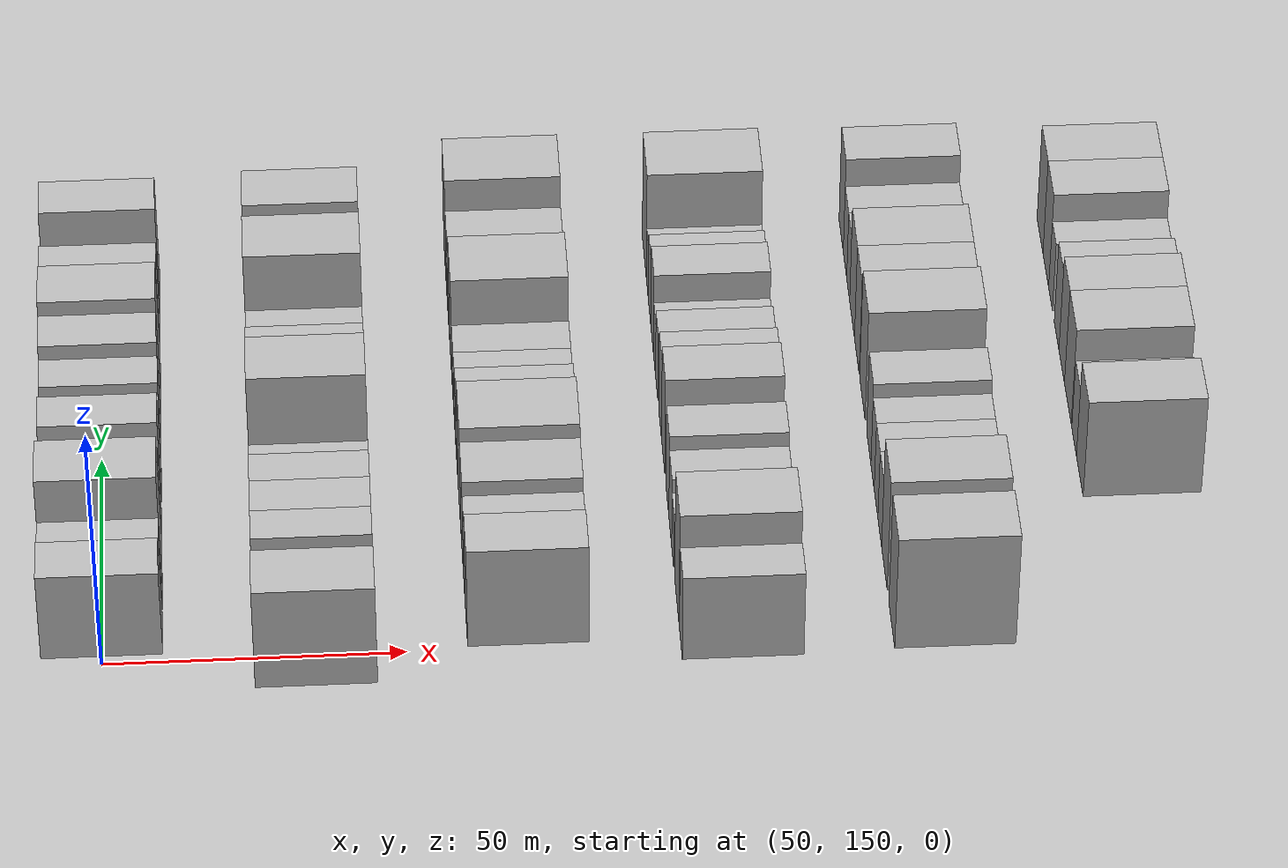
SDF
<sdf version="1.6">
 <world name="default">
  <model name="building_79">
   <static>1</static>
   <pose>50.0000 156.1337 0 0.000000 0.000000 0.000000</pose>
   <link name="link">
    <pose>0 0 9.00 0 0 0</pose>
    <collision name="collision"><geometry><box><size>20.0000 8.5910 18.0000</size></box></geometry></collision>
    <visual name="visual">
     <cast_shadows>0</cast_shadows>
     <geometry><box><size>20.0000 8.5910 18.0000</size></box></geometry>
     <material>
      <script>
       <uri>model://HANNAS_wall/materials/scripts</uri>
       <uri>model://HANNAS_wall/materials/textures</uri>
       <name>vrc/HANNAS_wall</name>
      </script>
     </material>
    </visual>
   </link>
  </model>
  <model name="building_80">
   <static>1</static>
   <pose>50.0000 165.4798 0 0.000000 0.000000 0.000000</pose>
   <link name="link">
    <pose>0 0 7.50 0 0 0</pose>
    <collision name="collision"><geometry><box><size>20.0000 6.1012 15.0000</size></box></geometry></collision>
    <visual name="visual">
     <cast_shadows>0</cast_shadows>
     <geometry><box><size>20.0000 6.1012 15.0000</size></box></geometry>
     <material>
      <script>
       <uri>model://HANNAS_wall/materials/scripts</uri>
       <uri>model://HANNAS_wall/materials/textures</uri>
       <name>vrc/HANNAS_wall</name>
      </script>
     </material>
    </visual>
   </link>
  </model>
  <model name="building_81">
   <static>1</static>
   <pose>50.0000 173.5960 0 0.000000 0.000000 0.000000</pose>
   <link name="link">
    <pose>0 0 12.00 0 0 0</pose>
    <collision name="collision"><geometry><box><size>20.0000 10.1312 24.0000</size></box></geometry></collision>
    <visual name="visual">
     <cast_shadows>0</cast_shadows>
     <geometry><box><size>20.0000 10.1312 24.0000</size></box></geometry>
     <material>
      <script>
       <uri>model://HANNAS_wall/materials/scripts</uri>
       <uri>model://HANNAS_wall/materials/textures</uri>
       <name>vrc/HANNAS_wall</name>
      </script>
     </material>
    </visual>
   </link>
  </model>
  <model name="building_82">
   <static>1</static>
   <pose>50.0000 182.7346 0 0.000000 0.000000 0.000000</pose>
   <link name="link">
    <pose>0 0 7.50 0 0 0</pose>
    <collision name="collision"><geometry><box><size>20.0000 6.1461 15.0000</size></box></geometry></collision>
    <visual name="visual">
     <cast_shadows>0</cast_shadows>
     <geometry><box><size>20.0000 6.1461 15.0000</size></box></geometry>
     <material>
      <script>
       <uri>model://HANNAS_wall/materials/scripts</uri>
       <uri>model://HANNAS_wall/materials/textures</uri>
       <name>vrc/HANNAS_wall</name>
      </script>
     </material>
    </visual>
   </link>
  </model>
  <model name="building_83">
   <static>1</static>
   <pose>50.0000 192.5878 0 0.000000 0.000000 0.000000</pose>
   <link name="link">
    <pose>0 0 9.00 0 0 0</pose>
    <collision name="collision"><geometry><box><size>20.0000 7.5605 18.0000</size></box></geometry></collision>
    <visual name="visual">
     <cast_shadows>0</cast_shadows>
     <geometry><box><size>20.0000 7.5605 18.0000</size></box></geometry>
     <material>
      <script>
       <uri>model://HANNAS_wall/materials/scripts</uri>
       <uri>model://HANNAS_wall/materials/textures</uri>
       <name>vrc/HANNAS_wall</name>
      </script>
     </material>
    </visual>
   </link>
  </model>
  <model name="building_84">
   <static>1</static>
   <pose>50.0000 199.3157 0 0.000000 0.000000 0.000000</pose>
   <link name="link">
    <pose>0 0 6.00 0 0 0</pose>
    <collision name="collision"><geometry><box><size>20.0000 5.8952 12.0000</size></box></geometry></collision>
    <visual name="visual">
     <cast_shadows>0</cast_shadows>
     <geometry><box><size>20.0000 5.8952 12.0000</size></box></geometry>
     <material>
      <script>
       <uri>model://HANNAS_wall/materials/scripts</uri>
       <uri>model://HANNAS_wall/materials/textures</uri>
       <name>vrc/HANNAS_wall</name>
      </script>
     </material>
    </visual>
   </link>
  </model>
  <model name="building_85">
   <static>1</static>
   <pose>50.0000 205.7539 0 0.000000 0.000000 0.000000</pose>
   <link name="link">
    <pose>0 0 7.50 0 0 0</pose>
    <collision name="collision"><geometry><box><size>20.0000 6.9813 15.0000</size></box></geometry></collision>
    <visual name="visual">
     <cast_shadows>0</cast_shadows>
     <geometry><box><size>20.0000 6.9813 15.0000</size></box></geometry>
     <material>
      <script>
       <uri>model://HANNAS_wall/materials/scripts</uri>
       <uri>model://HANNAS_wall/materials/textures</uri>
       <name>vrc/HANNAS_wall</name>
      </script>
     </material>
    </visual>
   </link>
  </model>
  <model name="building_86">
   <static>1</static>
   <pose>50.0000 213.2031 0 0.000000 0.000000 0.000000</pose>
   <link name="link">
    <pose>0 0 9.00 0 0 0</pose>
    <collision name="collision"><geometry><box><size>20.0000 7.9171 18.0000</size></box></geometry></collision>
    <visual name="visual">
     <cast_shadows>0</cast_shadows>
     <geometry><box><size>20.0000 7.9171 18.0000</size></box></geometry>
     <material>
      <script>
       <uri>model://HANNAS_wall/materials/scripts</uri>
       <uri>model://HANNAS_wall/materials/textures</uri>
       <name>vrc/HANNAS_wall</name>
      </script>
     </material>
    </visual>
   </link>
  </model>
  <model name="building_87">
   <static>1</static>
   <pose>50.0000 221.9547 0 0.000000 0.000000 0.000000</pose>
   <link name="link">
    <pose>0 0 10.50 0 0 0</pose>
    <collision name="collision"><geometry><box><size>20.0000 9.5860 21.0000</size></box></geometry></collision>
    <visual name="visual">
     <cast_shadows>0</cast_shadows>
     <geometry><box><size>20.0000 9.5860 21.0000</size></box></geometry>
     <material>
      <script>
       <uri>model://HANNAS_wall/materials/scripts</uri>
       <uri>model://HANNAS_wall/materials/textures</uri>
       <name>vrc/HANNAS_wall</name>
      </script>
     </material>
    </visual>
   </link>
  </model>
  <model name="building_88">
   <static>1</static>
   <pose>50.0000 231.6643 0 0.000000 0.000000 0.000000</pose>
   <link name="link">
    <pose>0 0 9.00 0 0 0</pose>
    <collision name="collision"><geometry><box><size>20.0000 7.8333 18.0000</size></box></geometry></collision>
    <visual name="visual">
     <cast_shadows>0</cast_shadows>
     <geometry><box><size>20.0000 7.8333 18.0000</size></box></geometry>
     <material>
      <script>
       <uri>model://HANNAS_wall/materials/scripts</uri>
       <uri>model://HANNAS_wall/materials/textures</uri>
       <name>vrc/HANNAS_wall</name>
      </script>
     </material>
    </visual>
   </link>
  </model>
  <model name="building_89">
   <static>1</static>
   <pose>50.0000 238.2363 0 0.000000 0.000000 0.000000</pose>
   <link name="link">
    <pose>0 0 6.00 0 0 0</pose>
    <collision name="collision"><geometry><box><size>20.0000 5.3108 12.0000</size></box></geometry></collision>
    <visual name="visual">
     <cast_shadows>0</cast_shadows>
     <geometry><box><size>20.0000 5.3108 12.0000</size></box></geometry>
     <material>
      <script>
       <uri>model://HANNAS_wall/materials/scripts</uri>
       <uri>model://HANNAS_wall/materials/textures</uri>
       <name>vrc/HANNAS_wall</name>
      </script>
     </material>
    </visual>
   </link>
  </model>
  <model name="building_90">
   <static>1</static>
   <pose>50.0000 245.1266 0 0.000000 0.000000 0.000000</pose>
   <link name="link">
    <pose>0 0 10.50 0 0 0</pose>
    <collision name="collision"><geometry><box><size>20.0000 8.4697 21.0000</size></box></geometry></collision>
    <visual name="visual">
     <cast_shadows>0</cast_shadows>
     <geometry><box><size>20.0000 8.4697 21.0000</size></box></geometry>
     <material>
      <script>
       <uri>model://HANNAS_wall/materials/scripts</uri>
       <uri>model://HANNAS_wall/materials/textures</uri>
       <name>vrc/HANNAS_wall</name>
      </script>
     </material>
    </visual>
   </link>
  </model>
  <model name="building_209">
   <static>1</static>
   <pose>85.0000 148.1686 0 0.000000 0.000000 0.000000</pose>
   <link name="link">
    <pose>0 0 10.50 0 0 0</pose>
    <collision name="collision"><geometry><box><size>20.0000 10.2588 21.0000</size></box></geometry></collision>
    <visual name="visual">
     <cast_shadows>0</cast_shadows>
     <geometry><box><size>20.0000 10.2588 21.0000</size></box></geometry>
     <material>
      <script>
       <uri>model://HANNAS_wall/materials/scripts</uri>
       <uri>model://HANNAS_wall/materials/textures</uri>
       <name>vrc/HANNAS_wall</name>
      </script>
     </material>
    </visual>
   </link>
  </model>
  <model name="building_210">
   <static>1</static>
   <pose>85.0000 158.9031 0 0.000000 0.000000 0.000000</pose>
   <link name="link">
    <pose>0 0 6.00 0 0 0</pose>
    <collision name="collision"><geometry><box><size>20.0000 5.2103 12.0000</size></box></geometry></collision>
    <visual name="visual">
     <cast_shadows>0</cast_shadows>
     <geometry><box><size>20.0000 5.2103 12.0000</size></box></geometry>
     <material>
      <script>
       <uri>model://HANNAS_wall/materials/scripts</uri>
       <uri>model://HANNAS_wall/materials/textures</uri>
       <name>vrc/HANNAS_wall</name>
      </script>
     </material>
    </visual>
   </link>
  </model>
  <model name="building_211">
   <static>1</static>
   <pose>85.0000 165.9620 0 0.000000 0.000000 0.000000</pose>
   <link name="link">
    <pose>0 0 7.50 0 0 0</pose>
    <collision name="collision"><geometry><box><size>20.0000 6.9075 15.0000</size></box></geometry></collision>
    <visual name="visual">
     <cast_shadows>0</cast_shadows>
     <geometry><box><size>20.0000 6.9075 15.0000</size></box></geometry>
     <material>
      <script>
       <uri>model://HANNAS_wall/materials/scripts</uri>
       <uri>model://HANNAS_wall/materials/textures</uri>
       <name>vrc/HANNAS_wall</name>
      </script>
     </material>
    </visual>
   </link>
  </model>
  <model name="building_212">
   <static>1</static>
   <pose>85.0000 173.0814 0 0.000000 0.000000 0.000000</pose>
   <link name="link">
    <pose>0 0 7.50 0 0 0</pose>
    <collision name="collision"><geometry><box><size>20.0000 7.3312 15.0000</size></box></geometry></collision>
    <visual name="visual">
     <cast_shadows>0</cast_shadows>
     <geometry><box><size>20.0000 7.3312 15.0000</size></box></geometry>
     <material>
      <script>
       <uri>model://HANNAS_wall/materials/scripts</uri>
       <uri>model://HANNAS_wall/materials/textures</uri>
       <name>vrc/HANNAS_wall</name>
      </script>
     </material>
    </visual>
   </link>
  </model>
  <model name="building_213">
   <static>1</static>
   <pose>85.0000 180.0428 0 0.000000 0.000000 0.000000</pose>
   <link name="link">
    <pose>0 0 7.50 0 0 0</pose>
    <collision name="collision"><geometry><box><size>20.0000 6.5916 15.0000</size></box></geometry></collision>
    <visual name="visual">
     <cast_shadows>0</cast_shadows>
     <geometry><box><size>20.0000 6.5916 15.0000</size></box></geometry>
     <material>
      <script>
       <uri>model://HANNAS_wall/materials/scripts</uri>
       <uri>model://HANNAS_wall/materials/textures</uri>
       <name>vrc/HANNAS_wall</name>
      </script>
     </material>
    </visual>
   </link>
  </model>
  <model name="building_214">
   <static>1</static>
   <pose>85.0000 186.2026 0 0.000000 0.000000 0.000000</pose>
   <link name="link">
    <pose>0 0 6.00 0 0 0</pose>
    <collision name="collision"><geometry><box><size>20.0000 5.7280 12.0000</size></box></geometry></collision>
    <visual name="visual">
     <cast_shadows>0</cast_shadows>
     <geometry><box><size>20.0000 5.7280 12.0000</size></box></geometry>
     <material>
      <script>
       <uri>model://HANNAS_wall/materials/scripts</uri>
       <uri>model://HANNAS_wall/materials/textures</uri>
       <name>vrc/HANNAS_wall</name>
      </script>
     </material>
    </visual>
   </link>
  </model>
  <model name="building_215">
   <static>1</static>
   <pose>85.0000 197.4309 0 0.000000 0.000000 0.000000</pose>
   <link name="link">
    <pose>0 0 12.00 0 0 0</pose>
    <collision name="collision"><geometry><box><size>20.0000 10.7288 24.0000</size></box></geometry></collision>
    <visual name="visual">
     <cast_shadows>0</cast_shadows>
     <geometry><box><size>20.0000 10.7288 24.0000</size></box></geometry>
     <material>
      <script>
       <uri>model://HANNAS_wall/materials/scripts</uri>
       <uri>model://HANNAS_wall/materials/textures</uri>
       <name>vrc/HANNAS_wall</name>
      </script>
     </material>
    </visual>
   </link>
  </model>
  <model name="building_216">
   <static>1</static>
   <pose>85.0000 208.5797 0 0.000000 0.000000 0.000000</pose>
   <link name="link">
    <pose>0 0 9.00 0 0 0</pose>
    <collision name="collision"><geometry><box><size>20.0000 7.5687 18.0000</size></box></geometry></collision>
    <visual name="visual">
     <cast_shadows>0</cast_shadows>
     <geometry><box><size>20.0000 7.5687 18.0000</size></box></geometry>
     <material>
      <script>
       <uri>model://HANNAS_wall/materials/scripts</uri>
       <uri>model://HANNAS_wall/materials/textures</uri>
       <name>vrc/HANNAS_wall</name>
      </script>
     </material>
    </visual>
   </link>
  </model>
  <model name="building_217">
   <static>1</static>
   <pose>85.0000 215.3367 0 0.000000 0.000000 0.000000</pose>
   <link name="link">
    <pose>0 0 6.00 0 0 0</pose>
    <collision name="collision"><geometry><box><size>20.0000 5.9454 12.0000</size></box></geometry></collision>
    <visual name="visual">
     <cast_shadows>0</cast_shadows>
     <geometry><box><size>20.0000 5.9454 12.0000</size></box></geometry>
     <material>
      <script>
       <uri>model://HANNAS_wall/materials/scripts</uri>
       <uri>model://HANNAS_wall/materials/textures</uri>
       <name>vrc/HANNAS_wall</name>
      </script>
     </material>
    </visual>
   </link>
  </model>
  <model name="building_218">
   <static>1</static>
   <pose>85.0000 220.9538 0 0.000000 0.000000 0.000000</pose>
   <link name="link">
    <pose>0 0 6.00 0 0 0</pose>
    <collision name="collision"><geometry><box><size>20.0000 5.2887 12.0000</size></box></geometry></collision>
    <visual name="visual">
     <cast_shadows>0</cast_shadows>
     <geometry><box><size>20.0000 5.2887 12.0000</size></box></geometry>
     <material>
      <script>
       <uri>model://HANNAS_wall/materials/scripts</uri>
       <uri>model://HANNAS_wall/materials/textures</uri>
       <name>vrc/HANNAS_wall</name>
      </script>
     </material>
    </visual>
   </link>
  </model>
  <model name="building_219">
   <static>1</static>
   <pose>85.0000 229.0653 0 0.000000 0.000000 0.000000</pose>
   <link name="link">
    <pose>0 0 12.00 0 0 0</pose>
    <collision name="collision"><geometry><box><size>20.0000 10.9344 24.0000</size></box></geometry></collision>
    <visual name="visual">
     <cast_shadows>0</cast_shadows>
     <geometry><box><size>20.0000 10.9344 24.0000</size></box></geometry>
     <material>
      <script>
       <uri>model://HANNAS_wall/materials/scripts</uri>
       <uri>model://HANNAS_wall/materials/textures</uri>
       <name>vrc/HANNAS_wall</name>
      </script>
     </material>
    </visual>
   </link>
  </model>
  <model name="building_220">
   <static>1</static>
   <pose>85.0000 237.7225 0 0.000000 0.000000 0.000000</pose>
   <link name="link">
    <pose>0 0 7.50 0 0 0</pose>
    <collision name="collision"><geometry><box><size>20.0000 6.3800 15.0000</size></box></geometry></collision>
    <visual name="visual">
     <cast_shadows>0</cast_shadows>
     <geometry><box><size>20.0000 6.3800 15.0000</size></box></geometry>
     <material>
      <script>
       <uri>model://HANNAS_wall/materials/scripts</uri>
       <uri>model://HANNAS_wall/materials/textures</uri>
       <name>vrc/HANNAS_wall</name>
      </script>
     </material>
    </visual>
   </link>
  </model>
  <model name="building_221">
   <static>1</static>
   <pose>85.0000 245.6559 0 0.000000 0.000000 0.000000</pose>
   <link name="link">
    <pose>0 0 10.50 0 0 0</pose>
    <collision name="collision"><geometry><box><size>20.0000 9.4868 21.0000</size></box></geometry></collision>
    <visual name="visual">
     <cast_shadows>0</cast_shadows>
     <geometry><box><size>20.0000 9.4868 21.0000</size></box></geometry>
     <material>
      <script>
       <uri>model://HANNAS_wall/materials/scripts</uri>
       <uri>model://HANNAS_wall/materials/textures</uri>
       <name>vrc/HANNAS_wall</name>
      </script>
     </material>
    </visual>
   </link>
  </model>
  <model name="building_332">
   <static>1</static>
   <pose>120.0000 155.3937 0 0.000000 0.000000 0.000000</pose>
   <link name="link">
    <pose>0 0 10.50 0 0 0</pose>
    <collision name="collision"><geometry><box><size>20.0000 9.1762 21.0000</size></box></geometry></collision>
    <visual name="visual">
     <cast_shadows>0</cast_shadows>
     <geometry><box><size>20.0000 9.1762 21.0000</size></box></geometry>
     <material>
      <script>
       <uri>model://HANNAS_wall/materials/scripts</uri>
       <uri>model://HANNAS_wall/materials/textures</uri>
       <name>vrc/HANNAS_wall</name>
      </script>
     </material>
    </visual>
   </link>
  </model>
  <model name="building_333">
   <static>1</static>
   <pose>120.0000 163.8452 0 0.000000 0.000000 0.000000</pose>
   <link name="link">
    <pose>0 0 9.00 0 0 0</pose>
    <collision name="collision"><geometry><box><size>20.0000 7.7269 18.0000</size></box></geometry></collision>
    <visual name="visual">
     <cast_shadows>0</cast_shadows>
     <geometry><box><size>20.0000 7.7269 18.0000</size></box></geometry>
     <material>
      <script>
       <uri>model://HANNAS_wall/materials/scripts</uri>
       <uri>model://HANNAS_wall/materials/textures</uri>
       <name>vrc/HANNAS_wall</name>
      </script>
     </material>
    </visual>
   </link>
  </model>
  <model name="building_334">
   <static>1</static>
   <pose>120.0000 172.6794 0 0.000000 0.000000 0.000000</pose>
   <link name="link">
    <pose>0 0 10.50 0 0 0</pose>
    <collision name="collision"><geometry><box><size>20.0000 9.9414 21.0000</size></box></geometry></collision>
    <visual name="visual">
     <cast_shadows>0</cast_shadows>
     <geometry><box><size>20.0000 9.9414 21.0000</size></box></geometry>
     <material>
      <script>
       <uri>model://HANNAS_wall/materials/scripts</uri>
       <uri>model://HANNAS_wall/materials/textures</uri>
       <name>vrc/HANNAS_wall</name>
      </script>
     </material>
    </visual>
   </link>
  </model>
  <model name="building_335">
   <static>1</static>
   <pose>120.0000 183.5876 0 0.000000 0.000000 0.000000</pose>
   <link name="link">
    <pose>0 0 12.00 0 0 0</pose>
    <collision name="collision"><geometry><box><size>20.0000 11.8751 24.0000</size></box></geometry></collision>
    <visual name="visual">
     <cast_shadows>0</cast_shadows>
     <geometry><box><size>20.0000 11.8751 24.0000</size></box></geometry>
     <material>
      <script>
       <uri>model://HANNAS_wall/materials/scripts</uri>
       <uri>model://HANNAS_wall/materials/textures</uri>
       <name>vrc/HANNAS_wall</name>
      </script>
     </material>
    </visual>
   </link>
  </model>
  <model name="building_336">
   <static>1</static>
   <pose>120.0000 195.6427 0 0.000000 0.000000 0.000000</pose>
   <link name="link">
    <pose>0 0 9.00 0 0 0</pose>
    <collision name="collision"><geometry><box><size>20.0000 8.2351 18.0000</size></box></geometry></collision>
    <visual name="visual">
     <cast_shadows>0</cast_shadows>
     <geometry><box><size>20.0000 8.2351 18.0000</size></box></geometry>
     <material>
      <script>
       <uri>model://HANNAS_wall/materials/scripts</uri>
       <uri>model://HANNAS_wall/materials/textures</uri>
       <name>vrc/HANNAS_wall</name>
      </script>
     </material>
    </visual>
   </link>
  </model>
  <model name="building_337">
   <static>1</static>
   <pose>120.0000 203.5070 0 0.000000 0.000000 0.000000</pose>
   <link name="link">
    <pose>0 0 7.50 0 0 0</pose>
    <collision name="collision"><geometry><box><size>20.0000 7.4935 15.0000</size></box></geometry></collision>
    <visual name="visual">
     <cast_shadows>0</cast_shadows>
     <geometry><box><size>20.0000 7.4935 15.0000</size></box></geometry>
     <material>
      <script>
       <uri>model://HANNAS_wall/materials/scripts</uri>
       <uri>model://HANNAS_wall/materials/textures</uri>
       <name>vrc/HANNAS_wall</name>
      </script>
     </material>
    </visual>
   </link>
  </model>
  <model name="building_338">
   <static>1</static>
   <pose>120.0000 210.7740 0 0.000000 0.000000 0.000000</pose>
   <link name="link">
    <pose>0 0 7.50 0 0 0</pose>
    <collision name="collision"><geometry><box><size>20.0000 7.0405 15.0000</size></box></geometry></collision>
    <visual name="visual">
     <cast_shadows>0</cast_shadows>
     <geometry><box><size>20.0000 7.0405 15.0000</size></box></geometry>
     <material>
      <script>
       <uri>model://HANNAS_wall/materials/scripts</uri>
       <uri>model://HANNAS_wall/materials/textures</uri>
       <name>vrc/HANNAS_wall</name>
      </script>
     </material>
    </visual>
   </link>
  </model>
  <model name="building_339">
   <static>1</static>
   <pose>120.0000 221.1693 0 0.000000 0.000000 0.000000</pose>
   <link name="link">
    <pose>0 0 12.00 0 0 0</pose>
    <collision name="collision"><geometry><box><size>20.0000 11.7501 24.0000</size></box></geometry></collision>
    <visual name="visual">
     <cast_shadows>0</cast_shadows>
     <geometry><box><size>20.0000 11.7501 24.0000</size></box></geometry>
     <material>
      <script>
       <uri>model://HANNAS_wall/materials/scripts</uri>
       <uri>model://HANNAS_wall/materials/textures</uri>
       <name>vrc/HANNAS_wall</name>
      </script>
     </material>
    </visual>
   </link>
  </model>
  <model name="building_340">
   <static>1</static>
   <pose>120.0000 230.3986 0 0.000000 0.000000 0.000000</pose>
   <link name="link">
    <pose>0 0 7.50 0 0 0</pose>
    <collision name="collision"><geometry><box><size>20.0000 6.7084 15.0000</size></box></geometry></collision>
    <visual name="visual">
     <cast_shadows>0</cast_shadows>
     <geometry><box><size>20.0000 6.7084 15.0000</size></box></geometry>
     <material>
      <script>
       <uri>model://HANNAS_wall/materials/scripts</uri>
       <uri>model://HANNAS_wall/materials/textures</uri>
       <name>vrc/HANNAS_wall</name>
      </script>
     </material>
    </visual>
   </link>
  </model>
  <model name="building_341">
   <static>1</static>
   <pose>120.0000 237.3841 0 0.000000 0.000000 0.000000</pose>
   <link name="link">
    <pose>0 0 9.00 0 0 0</pose>
    <collision name="collision"><geometry><box><size>20.0000 7.2627 18.0000</size></box></geometry></collision>
    <visual name="visual">
     <cast_shadows>0</cast_shadows>
     <geometry><box><size>20.0000 7.2627 18.0000</size></box></geometry>
     <material>
      <script>
       <uri>model://HANNAS_wall/materials/scripts</uri>
       <uri>model://HANNAS_wall/materials/textures</uri>
       <name>vrc/HANNAS_wall</name>
      </script>
     </material>
    </visual>
   </link>
  </model>
  <model name="building_342">
   <static>1</static>
   <pose>120.0000 247.7692 0 0.000000 0.000000 0.000000</pose>
   <link name="link">
    <pose>0 0 12.00 0 0 0</pose>
    <collision name="collision"><geometry><box><size>20.0000 11.5075 24.0000</size></box></geometry></collision>
    <visual name="visual">
     <cast_shadows>0</cast_shadows>
     <geometry><box><size>20.0000 11.5075 24.0000</size></box></geometry>
     <material>
      <script>
       <uri>model://HANNAS_wall/materials/scripts</uri>
       <uri>model://HANNAS_wall/materials/textures</uri>
       <name>vrc/HANNAS_wall</name>
      </script>
     </material>
    </visual>
   </link>
  </model>
  <model name="building_461">
   <static>1</static>
   <pose>155.0000 149.4391 0 0.000000 0.000000 0.000000</pose>
   <link name="link">
    <pose>0 0 9.00 0 0 0</pose>
    <collision name="collision"><geometry><box><size>20.0000 7.4512 18.0000</size></box></geometry></collision>
    <visual name="visual">
     <cast_shadows>0</cast_shadows>
     <geometry><box><size>20.0000 7.4512 18.0000</size></box></geometry>
     <material>
      <script>
       <uri>model://HANNAS_wall/materials/scripts</uri>
       <uri>model://HANNAS_wall/materials/textures</uri>
       <name>vrc/HANNAS_wall</name>
      </script>
     </material>
    </visual>
   </link>
  </model>
  <model name="building_462">
   <static>1</static>
   <pose>155.0000 159.5597 0 0.000000 0.000000 0.000000</pose>
   <link name="link">
    <pose>0 0 12.00 0 0 0</pose>
    <collision name="collision"><geometry><box><size>20.0000 10.7901 24.0000</size></box></geometry></collision>
    <visual name="visual">
     <cast_shadows>0</cast_shadows>
     <geometry><box><size>20.0000 10.7901 24.0000</size></box></geometry>
     <material>
      <script>
       <uri>model://HANNAS_wall/materials/scripts</uri>
       <uri>model://HANNAS_wall/materials/textures</uri>
       <name>vrc/HANNAS_wall</name>
      </script>
     </material>
    </visual>
   </link>
  </model>
  <model name="building_463">
   <static>1</static>
   <pose>155.0000 170.5157 0 0.000000 0.000000 0.000000</pose>
   <link name="link">
    <pose>0 0 6.00 0 0 0</pose>
    <collision name="collision"><geometry><box><size>20.0000 5.1218 12.0000</size></box></geometry></collision>
    <visual name="visual">
     <cast_shadows>0</cast_shadows>
     <geometry><box><size>20.0000 5.1218 12.0000</size></box></geometry>
     <material>
      <script>
       <uri>model://HANNAS_wall/materials/scripts</uri>
       <uri>model://HANNAS_wall/materials/textures</uri>
       <name>vrc/HANNAS_wall</name>
      </script>
     </material>
    </visual>
   </link>
  </model>
  <model name="building_464">
   <static>1</static>
   <pose>155.0000 176.7029 0 0.000000 0.000000 0.000000</pose>
   <link name="link">
    <pose>0 0 7.50 0 0 0</pose>
    <collision name="collision"><geometry><box><size>20.0000 7.2527 15.0000</size></box></geometry></collision>
    <visual name="visual">
     <cast_shadows>0</cast_shadows>
     <geometry><box><size>20.0000 7.2527 15.0000</size></box></geometry>
     <material>
      <script>
       <uri>model://HANNAS_wall/materials/scripts</uri>
       <uri>model://HANNAS_wall/materials/textures</uri>
       <name>vrc/HANNAS_wall</name>
      </script>
     </material>
    </visual>
   </link>
  </model>
  <model name="building_465">
   <static>1</static>
   <pose>155.0000 184.2370 0 0.000000 0.000000 0.000000</pose>
   <link name="link">
    <pose>0 0 9.00 0 0 0</pose>
    <collision name="collision"><geometry><box><size>20.0000 7.8154 18.0000</size></box></geometry></collision>
    <visual name="visual">
     <cast_shadows>0</cast_shadows>
     <geometry><box><size>20.0000 7.8154 18.0000</size></box></geometry>
     <material>
      <script>
       <uri>model://HANNAS_wall/materials/scripts</uri>
       <uri>model://HANNAS_wall/materials/textures</uri>
       <name>vrc/HANNAS_wall</name>
      </script>
     </material>
    </visual>
   </link>
  </model>
  <model name="building_466">
   <static>1</static>
   <pose>155.0000 195.4774 0 0.000000 0.000000 0.000000</pose>
   <link name="link">
    <pose>0 0 10.50 0 0 0</pose>
    <collision name="collision"><geometry><box><size>20.0000 8.6654 21.0000</size></box></geometry></collision>
    <visual name="visual">
     <cast_shadows>0</cast_shadows>
     <geometry><box><size>20.0000 8.6654 21.0000</size></box></geometry>
     <material>
      <script>
       <uri>model://HANNAS_wall/materials/scripts</uri>
       <uri>model://HANNAS_wall/materials/textures</uri>
       <name>vrc/HANNAS_wall</name>
      </script>
     </material>
    </visual>
   </link>
  </model>
  <model name="building_467">
   <static>1</static>
   <pose>155.0000 203.4416 0 0.000000 0.000000 0.000000</pose>
   <link name="link">
    <pose>0 0 9.00 0 0 0</pose>
    <collision name="collision"><geometry><box><size>20.0000 7.2629 18.0000</size></box></geometry></collision>
    <visual name="visual">
     <cast_shadows>0</cast_shadows>
     <geometry><box><size>20.0000 7.2629 18.0000</size></box></geometry>
     <material>
      <script>
       <uri>model://HANNAS_wall/materials/scripts</uri>
       <uri>model://HANNAS_wall/materials/textures</uri>
       <name>vrc/HANNAS_wall</name>
      </script>
     </material>
    </visual>
   </link>
  </model>
  <model name="building_468">
   <static>1</static>
   <pose>155.0000 213.1108 0 0.000000 0.000000 0.000000</pose>
   <link name="link">
    <pose>0 0 7.50 0 0 0</pose>
    <collision name="collision"><geometry><box><size>20.0000 6.0755 15.0000</size></box></geometry></collision>
    <visual name="visual">
     <cast_shadows>0</cast_shadows>
     <geometry><box><size>20.0000 6.0755 15.0000</size></box></geometry>
     <material>
      <script>
       <uri>model://HANNAS_wall/materials/scripts</uri>
       <uri>model://HANNAS_wall/materials/textures</uri>
       <name>vrc/HANNAS_wall</name>
      </script>
     </material>
    </visual>
   </link>
  </model>
  <model name="building_469">
   <static>1</static>
   <pose>155.0000 218.9493 0 0.000000 0.000000 0.000000</pose>
   <link name="link">
    <pose>0 0 6.00 0 0 0</pose>
    <collision name="collision"><geometry><box><size>20.0000 5.6014 12.0000</size></box></geometry></collision>
    <visual name="visual">
     <cast_shadows>0</cast_shadows>
     <geometry><box><size>20.0000 5.6014 12.0000</size></box></geometry>
     <material>
      <script>
       <uri>model://HANNAS_wall/materials/scripts</uri>
       <uri>model://HANNAS_wall/materials/textures</uri>
       <name>vrc/HANNAS_wall</name>
      </script>
     </material>
    </visual>
   </link>
  </model>
  <model name="building_470">
   <static>1</static>
   <pose>155.0000 225.6785 0 0.000000 0.000000 0.000000</pose>
   <link name="link">
    <pose>0 0 9.00 0 0 0</pose>
    <collision name="collision"><geometry><box><size>20.0000 7.8570 18.0000</size></box></geometry></collision>
    <visual name="visual">
     <cast_shadows>0</cast_shadows>
     <geometry><box><size>20.0000 7.8570 18.0000</size></box></geometry>
     <material>
      <script>
       <uri>model://HANNAS_wall/materials/scripts</uri>
       <uri>model://HANNAS_wall/materials/textures</uri>
       <name>vrc/HANNAS_wall</name>
      </script>
     </material>
    </visual>
   </link>
  </model>
  <model name="building_471">
   <static>1</static>
   <pose>155.0000 232.9554 0 0.000000 0.000000 0.000000</pose>
   <link name="link">
    <pose>0 0 7.50 0 0 0</pose>
    <collision name="collision"><geometry><box><size>20.0000 6.6967 15.0000</size></box></geometry></collision>
    <visual name="visual">
     <cast_shadows>0</cast_shadows>
     <geometry><box><size>20.0000 6.6967 15.0000</size></box></geometry>
     <material>
      <script>
       <uri>model://HANNAS_wall/materials/scripts</uri>
       <uri>model://HANNAS_wall/materials/textures</uri>
       <name>vrc/HANNAS_wall</name>
      </script>
     </material>
    </visual>
   </link>
  </model>
  <model name="building_472">
   <static>1</static>
   <pose>155.0000 238.9070 0 0.000000 0.000000 0.000000</pose>
   <link name="link">
    <pose>0 0 6.00 0 0 0</pose>
    <collision name="collision"><geometry><box><size>20.0000 5.2067 12.0000</size></box></geometry></collision>
    <visual name="visual">
     <cast_shadows>0</cast_shadows>
     <geometry><box><size>20.0000 5.2067 12.0000</size></box></geometry>
     <material>
      <script>
       <uri>model://HANNAS_wall/materials/scripts</uri>
       <uri>model://HANNAS_wall/materials/textures</uri>
       <name>vrc/HANNAS_wall</name>
      </script>
     </material>
    </visual>
   </link>
  </model>
  <model name="building_473">
   <static>1</static>
   <pose>155.0000 247.4117 0 0.000000 0.000000 0.000000</pose>
   <link name="link">
    <pose>0 0 12.00 0 0 0</pose>
    <collision name="collision"><geometry><box><size>20.0000 11.8028 24.0000</size></box></geometry></collision>
    <visual name="visual">
     <cast_shadows>0</cast_shadows>
     <geometry><box><size>20.0000 11.8028 24.0000</size></box></geometry>
     <material>
      <script>
       <uri>model://HANNAS_wall/materials/scripts</uri>
       <uri>model://HANNAS_wall/materials/textures</uri>
       <name>vrc/HANNAS_wall</name>
      </script>
     </material>
    </visual>
   </link>
  </model>
  <model name="building_596">
   <static>1</static>
   <pose>190.0000 151.8446 0 0.000000 0.000000 0.000000</pose>
   <link name="link">
    <pose>0 0 12.00 0 0 0</pose>
    <collision name="collision"><geometry><box><size>20.0000 10.9116 24.0000</size></box></geometry></collision>
    <visual name="visual">
     <cast_shadows>0</cast_shadows>
     <geometry><box><size>20.0000 10.9116 24.0000</size></box></geometry>
     <material>
      <script>
       <uri>model://HANNAS_wall/materials/scripts</uri>
       <uri>model://HANNAS_wall/materials/textures</uri>
       <name>vrc/HANNAS_wall</name>
      </script>
     </material>
    </visual>
   </link>
  </model>
  <model name="building_597">
   <static>1</static>
   <pose>190.0000 165.6492 0 0.000000 0.000000 0.000000</pose>
   <link name="link">
    <pose>0 0 12.00 0 0 0</pose>
    <collision name="collision"><geometry><box><size>20.0000 10.6976 24.0000</size></box></geometry></collision>
    <visual name="visual">
     <cast_shadows>0</cast_shadows>
     <geometry><box><size>20.0000 10.6976 24.0000</size></box></geometry>
     <material>
      <script>
       <uri>model://HANNAS_wall/materials/scripts</uri>
       <uri>model://HANNAS_wall/materials/textures</uri>
       <name>vrc/HANNAS_wall</name>
      </script>
     </material>
    </visual>
   </link>
  </model>
  <model name="building_598">
   <static>1</static>
   <pose>190.0000 174.5321 0 0.000000 0.000000 0.000000</pose>
   <link name="link">
    <pose>0 0 7.50 0 0 0</pose>
    <collision name="collision"><geometry><box><size>20.0000 7.0682 15.0000</size></box></geometry></collision>
    <visual name="visual">
     <cast_shadows>0</cast_shadows>
     <geometry><box><size>20.0000 7.0682 15.0000</size></box></geometry>
     <material>
      <script>
       <uri>model://HANNAS_wall/materials/scripts</uri>
       <uri>model://HANNAS_wall/materials/textures</uri>
       <name>vrc/HANNAS_wall</name>
      </script>
     </material>
    </visual>
   </link>
  </model>
  <model name="building_599">
   <static>1</static>
   <pose>190.0000 181.6065 0 0.000000 0.000000 0.000000</pose>
   <link name="link">
    <pose>0 0 7.50 0 0 0</pose>
    <collision name="collision"><geometry><box><size>20.0000 7.0805 15.0000</size></box></geometry></collision>
    <visual name="visual">
     <cast_shadows>0</cast_shadows>
     <geometry><box><size>20.0000 7.0805 15.0000</size></box></geometry>
     <material>
      <script>
       <uri>model://HANNAS_wall/materials/scripts</uri>
       <uri>model://HANNAS_wall/materials/textures</uri>
       <name>vrc/HANNAS_wall</name>
      </script>
     </material>
    </visual>
   </link>
  </model>
  <model name="building_600">
   <static>1</static>
   <pose>190.0000 188.3520 0 0.000000 0.000000 0.000000</pose>
   <link name="link">
    <pose>0 0 7.50 0 0 0</pose>
    <collision name="collision"><geometry><box><size>20.0000 6.4104 15.0000</size></box></geometry></collision>
    <visual name="visual">
     <cast_shadows>0</cast_shadows>
     <geometry><box><size>20.0000 6.4104 15.0000</size></box></geometry>
     <material>
      <script>
       <uri>model://HANNAS_wall/materials/scripts</uri>
       <uri>model://HANNAS_wall/materials/textures</uri>
       <name>vrc/HANNAS_wall</name>
      </script>
     </material>
    </visual>
   </link>
  </model>
  <model name="building_601">
   <static>1</static>
   <pose>190.0000 195.7372 0 0.000000 0.000000 0.000000</pose>
   <link name="link">
    <pose>0 0 9.00 0 0 0</pose>
    <collision name="collision"><geometry><box><size>20.0000 8.3602 18.0000</size></box></geometry></collision>
    <visual name="visual">
     <cast_shadows>0</cast_shadows>
     <geometry><box><size>20.0000 8.3602 18.0000</size></box></geometry>
     <material>
      <script>
       <uri>model://HANNAS_wall/materials/scripts</uri>
       <uri>model://HANNAS_wall/materials/textures</uri>
       <name>vrc/HANNAS_wall</name>
      </script>
     </material>
    </visual>
   </link>
  </model>
  <model name="building_602">
   <static>1</static>
   <pose>190.0000 208.4176 0 0.000000 0.000000 0.000000</pose>
   <link name="link">
    <pose>0 0 12.00 0 0 0</pose>
    <collision name="collision"><geometry><box><size>20.0000 11.0005 24.0000</size></box></geometry></collision>
    <visual name="visual">
     <cast_shadows>0</cast_shadows>
     <geometry><box><size>20.0000 11.0005 24.0000</size></box></geometry>
     <material>
      <script>
       <uri>model://HANNAS_wall/materials/scripts</uri>
       <uri>model://HANNAS_wall/materials/textures</uri>
       <name>vrc/HANNAS_wall</name>
      </script>
     </material>
    </visual>
   </link>
  </model>
  <model name="building_603">
   <static>1</static>
   <pose>190.0000 219.5661 0 0.000000 0.000000 0.000000</pose>
   <link name="link">
    <pose>0 0 10.50 0 0 0</pose>
    <collision name="collision"><geometry><box><size>20.0000 9.2967 21.0000</size></box></geometry></collision>
    <visual name="visual">
     <cast_shadows>0</cast_shadows>
     <geometry><box><size>20.0000 9.2967 21.0000</size></box></geometry>
     <material>
      <script>
       <uri>model://HANNAS_wall/materials/scripts</uri>
       <uri>model://HANNAS_wall/materials/textures</uri>
       <name>vrc/HANNAS_wall</name>
      </script>
     </material>
    </visual>
   </link>
  </model>
  <model name="building_604">
   <static>1</static>
   <pose>190.0000 229.2030 0 0.000000 0.000000 0.000000</pose>
   <link name="link">
    <pose>0 0 10.50 0 0 0</pose>
    <collision name="collision"><geometry><box><size>20.0000 9.9771 21.0000</size></box></geometry></collision>
    <visual name="visual">
     <cast_shadows>0</cast_shadows>
     <geometry><box><size>20.0000 9.9771 21.0000</size></box></geometry>
     <material>
      <script>
       <uri>model://HANNAS_wall/materials/scripts</uri>
       <uri>model://HANNAS_wall/materials/textures</uri>
       <name>vrc/HANNAS_wall</name>
      </script>
     </material>
    </visual>
   </link>
  </model>
  <model name="building_605">
   <static>1</static>
   <pose>190.0000 237.2280 0 0.000000 0.000000 0.000000</pose>
   <link name="link">
    <pose>0 0 7.50 0 0 0</pose>
    <collision name="collision"><geometry><box><size>20.0000 6.0728 15.0000</size></box></geometry></collision>
    <visual name="visual">
     <cast_shadows>0</cast_shadows>
     <geometry><box><size>20.0000 6.0728 15.0000</size></box></geometry>
     <material>
      <script>
       <uri>model://HANNAS_wall/materials/scripts</uri>
       <uri>model://HANNAS_wall/materials/textures</uri>
       <name>vrc/HANNAS_wall</name>
      </script>
     </material>
    </visual>
   </link>
  </model>
  <model name="building_606">
   <static>1</static>
   <pose>190.0000 243.8503 0 0.000000 0.000000 0.000000</pose>
   <link name="link">
    <pose>0 0 7.50 0 0 0</pose>
    <collision name="collision"><geometry><box><size>20.0000 7.1717 15.0000</size></box></geometry></collision>
    <visual name="visual">
     <cast_shadows>0</cast_shadows>
     <geometry><box><size>20.0000 7.1717 15.0000</size></box></geometry>
     <material>
      <script>
       <uri>model://HANNAS_wall/materials/scripts</uri>
       <uri>model://HANNAS_wall/materials/textures</uri>
       <name>vrc/HANNAS_wall</name>
      </script>
     </material>
    </visual>
   </link>
  </model>
  <model name="building_607">
   <static>1</static>
   <pose>190.0000 251.9245 0 0.000000 0.000000 0.000000</pose>
   <link name="link">
    <pose>0 0 10.50 0 0 0</pose>
    <collision name="collision"><geometry><box><size>20.0000 8.9768 21.0000</size></box></geometry></collision>
    <visual name="visual">
     <cast_shadows>0</cast_shadows>
     <geometry><box><size>20.0000 8.9768 21.0000</size></box></geometry>
     <material>
      <script>
       <uri>model://HANNAS_wall/materials/scripts</uri>
       <uri>model://HANNAS_wall/materials/textures</uri>
       <name>vrc/HANNAS_wall</name>
      </script>
     </material>
    </visual>
   </link>
  </model>
  <model name="building_720">
   <static>1</static>
   <pose>225.0000 186.6225 0 0.000000 0.000000 0.000000</pose>
   <link name="link">
    <pose>0 0 10.50 0 0 0</pose>
    <collision name="collision"><geometry><box><size>20.0000 10.2703 21.0000</size></box></geometry></collision>
    <visual name="visual">
     <cast_shadows>0</cast_shadows>
     <geometry><box><size>20.0000 10.2703 21.0000</size></box></geometry>
     <material>
      <script>
       <uri>model://HANNAS_wall/materials/scripts</uri>
       <uri>model://HANNAS_wall/materials/textures</uri>
       <name>vrc/HANNAS_wall</name>
      </script>
     </material>
    </visual>
   </link>
  </model>
  <model name="building_721">
   <static>1</static>
   <pose>225.0000 195.3606 0 0.000000 0.000000 0.000000</pose>
   <link name="link">
    <pose>0 0 7.50 0 0 0</pose>
    <collision name="collision"><geometry><box><size>20.0000 7.2060 15.0000</size></box></geometry></collision>
    <visual name="visual">
     <cast_shadows>0</cast_shadows>
     <geometry><box><size>20.0000 7.2060 15.0000</size></box></geometry>
     <material>
      <script>
       <uri>model://HANNAS_wall/materials/scripts</uri>
       <uri>model://HANNAS_wall/materials/textures</uri>
       <name>vrc/HANNAS_wall</name>
      </script>
     </material>
    </visual>
   </link>
  </model>
  <model name="building_722">
   <static>1</static>
   <pose>225.0000 205.1869 0 0.000000 0.000000 0.000000</pose>
   <link name="link">
    <pose>0 0 10.50 0 0 0</pose>
    <collision name="collision"><geometry><box><size>20.0000 10.4466 21.0000</size></box></geometry></collision>
    <visual name="visual">
     <cast_shadows>0</cast_shadows>
     <geometry><box><size>20.0000 10.4466 21.0000</size></box></geometry>
     <material>
      <script>
       <uri>model://HANNAS_wall/materials/scripts</uri>
       <uri>model://HANNAS_wall/materials/textures</uri>
       <name>vrc/HANNAS_wall</name>
      </script>
     </material>
    </visual>
   </link>
  </model>
  <model name="building_723">
   <static>1</static>
   <pose>225.0000 214.7947 0 0.000000 0.000000 0.000000</pose>
   <link name="link">
    <pose>0 0 10.50 0 0 0</pose>
    <collision name="collision"><geometry><box><size>20.0000 8.7690 21.0000</size></box></geometry></collision>
    <visual name="visual">
     <cast_shadows>0</cast_shadows>
     <geometry><box><size>20.0000 8.7690 21.0000</size></box></geometry>
     <material>
      <script>
       <uri>model://HANNAS_wall/materials/scripts</uri>
       <uri>model://HANNAS_wall/materials/textures</uri>
       <name>vrc/HANNAS_wall</name>
      </script>
     </material>
    </visual>
   </link>
  </model>
  <model name="building_724">
   <static>1</static>
   <pose>225.0000 222.9441 0 0.000000 0.000000 0.000000</pose>
   <link name="link">
    <pose>0 0 9.00 0 0 0</pose>
    <collision name="collision"><geometry><box><size>20.0000 7.5299 18.0000</size></box></geometry></collision>
    <visual name="visual">
     <cast_shadows>0</cast_shadows>
     <geometry><box><size>20.0000 7.5299 18.0000</size></box></geometry>
     <material>
      <script>
       <uri>model://HANNAS_wall/materials/scripts</uri>
       <uri>model://HANNAS_wall/materials/textures</uri>
       <name>vrc/HANNAS_wall</name>
      </script>
     </material>
    </visual>
   </link>
  </model>
  <model name="building_725">
   <static>1</static>
   <pose>225.0000 232.7364 0 0.000000 0.000000 0.000000</pose>
   <link name="link">
    <pose>0 0 7.50 0 0 0</pose>
    <collision name="collision"><geometry><box><size>20.0000 6.0547 15.0000</size></box></geometry></collision>
    <visual name="visual">
     <cast_shadows>0</cast_shadows>
     <geometry><box><size>20.0000 6.0547 15.0000</size></box></geometry>
     <material>
      <script>
       <uri>model://HANNAS_wall/materials/scripts</uri>
       <uri>model://HANNAS_wall/materials/textures</uri>
       <name>vrc/HANNAS_wall</name>
      </script>
     </material>
    </visual>
   </link>
  </model>
  <model name="building_726">
   <static>1</static>
   <pose>225.0000 240.4220 0 0.000000 0.000000 0.000000</pose>
   <link name="link">
    <pose>0 0 10.50 0 0 0</pose>
    <collision name="collision"><geometry><box><size>20.0000 9.3163 21.0000</size></box></geometry></collision>
    <visual name="visual">
     <cast_shadows>0</cast_shadows>
     <geometry><box><size>20.0000 9.3163 21.0000</size></box></geometry>
     <material>
      <script>
       <uri>model://HANNAS_wall/materials/scripts</uri>
       <uri>model://HANNAS_wall/materials/textures</uri>
       <name>vrc/HANNAS_wall</name>
      </script>
     </material>
    </visual>
   </link>
  </model>
  <model name="building_727">
   <static>1</static>
   <pose>225.0000 249.9343 0 0.000000 0.000000 0.000000</pose>
   <link name="link">
    <pose>0 0 10.50 0 0 0</pose>
    <collision name="collision"><geometry><box><size>20.0000 9.7084 21.0000</size></box></geometry></collision>
    <visual name="visual">
     <cast_shadows>0</cast_shadows>
     <geometry><box><size>20.0000 9.7084 21.0000</size></box></geometry>
     <material>
      <script>
       <uri>model://HANNAS_wall/materials/scripts</uri>
       <uri>model://HANNAS_wall/materials/textures</uri>
       <name>vrc/HANNAS_wall</name>
      </script>
     </material>
    </visual>
   </link>
  </model>
 </world>
</sdf>
